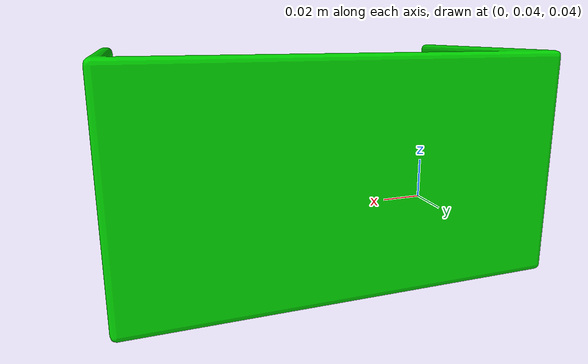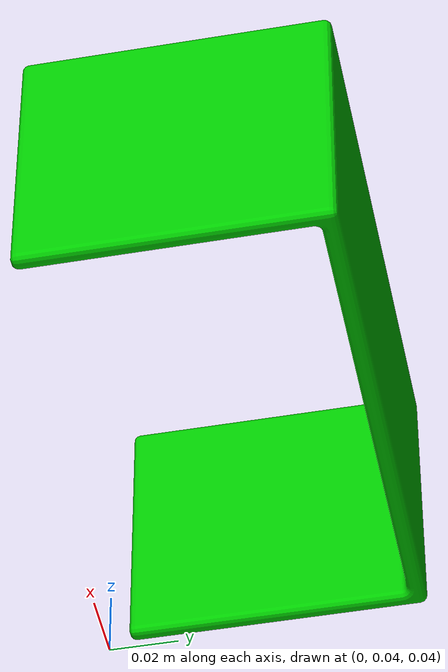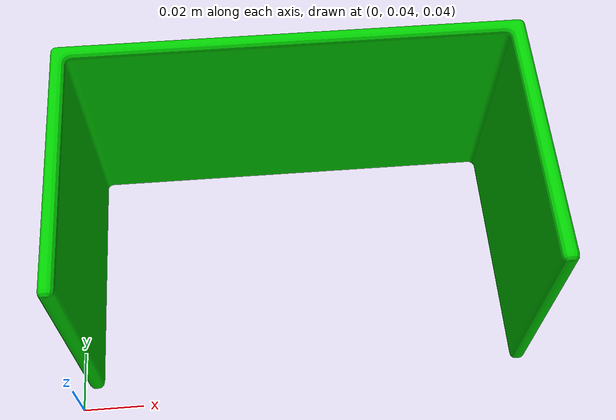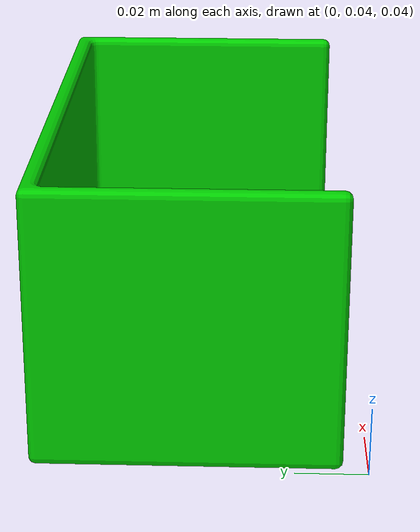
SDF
<?xml version="1.0" ?>
<sdf version="1.4">
    <model name="push_green">
        <link name="link">
            <inertial>
                <mass>15</mass>
                <inertia>
                    <ixx>0.0</ixx>
                    <ixy>0.0</ixy>
                    <ixz>0.0</ixz>
                    <iyy>0.0</iyy>
                    <iyz>0.0</iyz>
                    <izz>0.1</izz>
                </inertia>
            </inertial>
            <collision name="collision">
                <pose>0 0 0 0 0 0</pose>
                <geometry>
                    <mesh>
                        <uri>model://push_green/meshes/push_green.dae</uri>
                    </mesh>
                </geometry>
            </collision>
            <visual name="visual">
                <pose>0 0 0 0 0 0</pose>
                <geometry>
                    <mesh>
                        <uri>model://push_green/meshes/push_green.dae</uri>
                    </mesh>
                </geometry>
            </visual>
        </link>
        <static>1</static>
    </model>
</sdf>
